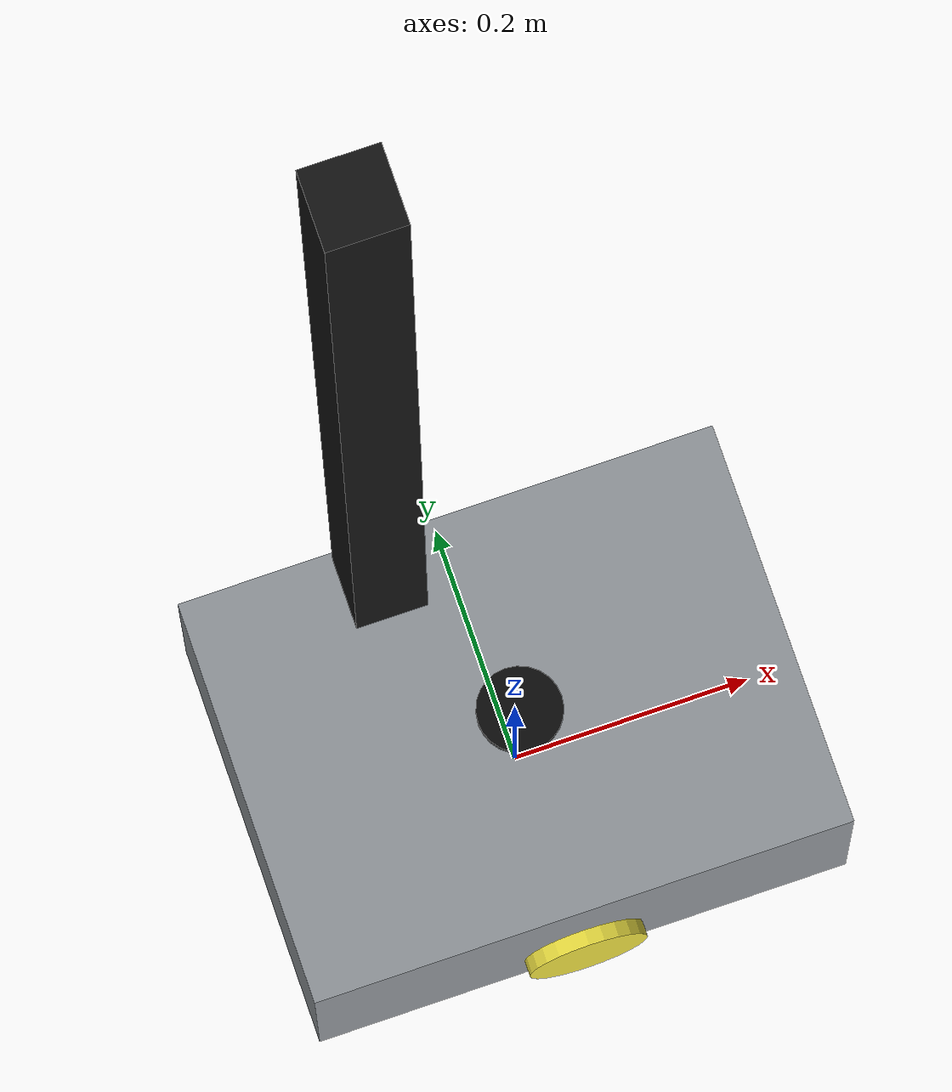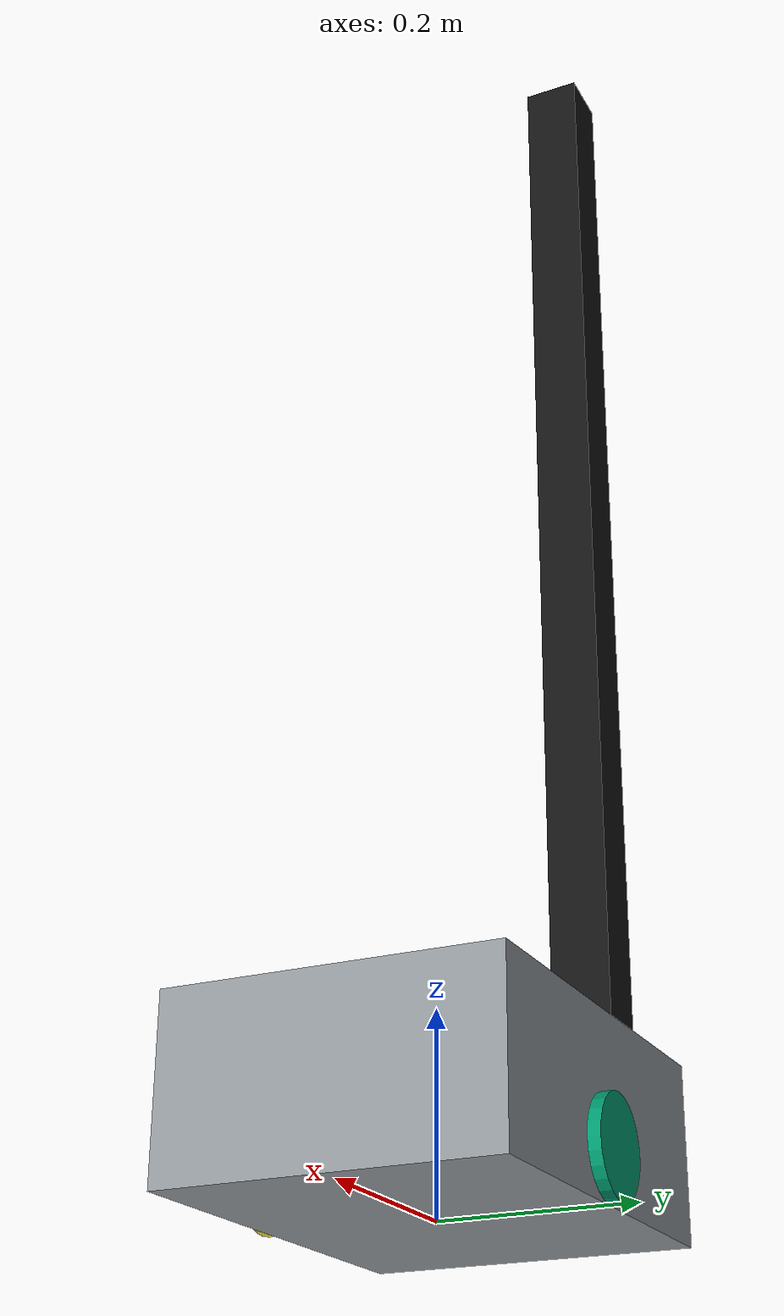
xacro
<?xml version="1.0"?>
<robot name="rosa_stretch_nav" xmlns:xacro="http://www.ros.org/wiki/xacro">
  <xacro:arg name="headless" default="false"/>
  <xacro:arg name="sim_speed_factor" default="1.0"/>
  <xacro:arg name="mujoco_model" default="$(find rosa_nav_bringup)/mujoco/office_lab_scene.xml"/>

  <link name="base_footprint"/>
  <link name="base_link">
    <visual>
      <origin xyz="0 0 0.09"/>
      <geometry><box size="0.45 0.34 0.18"/></geometry>
      <material name="stretch_gray"><color rgba="0.58 0.60 0.62 1"/></material>
    </visual>
    <collision>
      <origin xyz="0 0 0.09"/>
      <geometry><box size="0.45 0.34 0.18"/></geometry>
    </collision>
  </link>
  <joint name="base_footprint_joint" type="fixed">
    <parent link="base_footprint"/>
    <child link="base_link"/>
  </joint>

  <link name="link_left_wheel">
    <visual><geometry><cylinder radius="0.05" length="0.025"/></geometry></visual>
  </link>
  <joint name="joint_left_wheel" type="continuous">
    <parent link="base_link"/>
    <child link="link_left_wheel"/>
    <origin xyz="0 0.17035 0.0508" rpy="1.5707963268 0 0"/>
    <axis xyz="0 1 0"/>
  </joint>

  <link name="link_right_wheel">
    <visual><geometry><cylinder radius="0.05" length="0.025"/></geometry></visual>
  </link>
  <joint name="joint_right_wheel" type="continuous">
    <parent link="base_link"/>
    <child link="link_right_wheel"/>
    <origin xyz="0 -0.17035 0.0508" rpy="1.5707963268 0 0"/>
    <axis xyz="0 1 0"/>
  </joint>

  <link name="laser">
    <visual>
      <geometry><cylinder radius="0.035" length="0.04"/></geometry>
      <material name="laser_black"><color rgba="0.05 0.05 0.05 1"/></material>
    </visual>
  </link>
  <joint name="laser_joint" type="fixed">
    <parent link="base_link"/>
    <child link="laser"/>
    <origin xyz="0.004 0 0.1664"/>
  </joint>

  <link name="mast_link">
    <visual>
      <origin xyz="-0.067 0.135 0.68"/>
      <geometry><box size="0.06 0.06 1.30"/></geometry>
      <material name="mast_black"><color rgba="0.08 0.08 0.08 1"/></material>
    </visual>
  </link>
  <joint name="mast_fixed_joint" type="fixed">
    <parent link="base_link"/>
    <child link="mast_link"/>
  </joint>

  <ros2_control name="MujocoSystem" type="system">
    <hardware>
      <plugin>mujoco_ros2_control/MujocoSystemInterface</plugin>
      <param name="mujoco_model">$(arg mujoco_model)</param>
      <param name="headless">$(arg headless)</param>
      <param name="sim_speed_factor">$(arg sim_speed_factor)</param>
      <param name="initial_keyframe">stow</param>
      <param name="odom_free_joint_name">base_free_joint</param>
      <param name="odom_topic">/ground_truth/odom</param>
      <param name="lidar_publish_rate">10.0</param>
    </hardware>

    <joint name="joint_left_wheel">
      <command_interface name="velocity">
        <param name="min">-6.0</param>
        <param name="max">6.0</param>
      </command_interface>
      <state_interface name="position"><param name="initial_value">0.0</param></state_interface>
      <state_interface name="velocity"><param name="initial_value">0.0</param></state_interface>
    </joint>
    <joint name="joint_right_wheel">
      <command_interface name="velocity">
        <param name="min">-6.0</param>
        <param name="max">6.0</param>
      </command_interface>
      <state_interface name="position"><param name="initial_value">0.0</param></state_interface>
      <state_interface name="velocity"><param name="initial_value">0.0</param></state_interface>
    </joint>

    <sensor name="lidar">
      <param name="frame_name">laser</param>
      <param name="angle_increment">0.017453292519943295</param>
      <param name="min_angle">-3.141592653589793</param>
      <param name="max_angle">3.12413936106985</param>
      <param name="range_min">0.20</param>
      <param name="range_max">8.0</param>
      <param name="laserscan_topic">/scan</param>
    </sensor>
  </ros2_control>
</robot>
